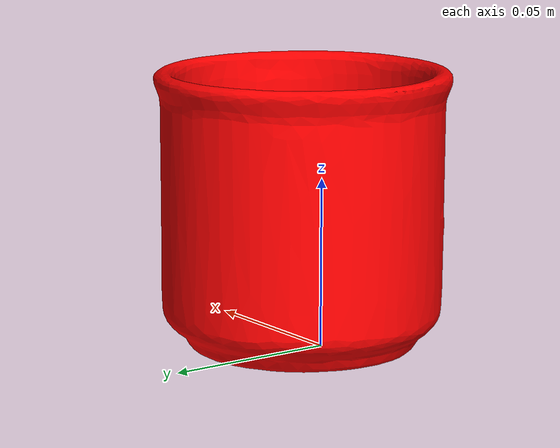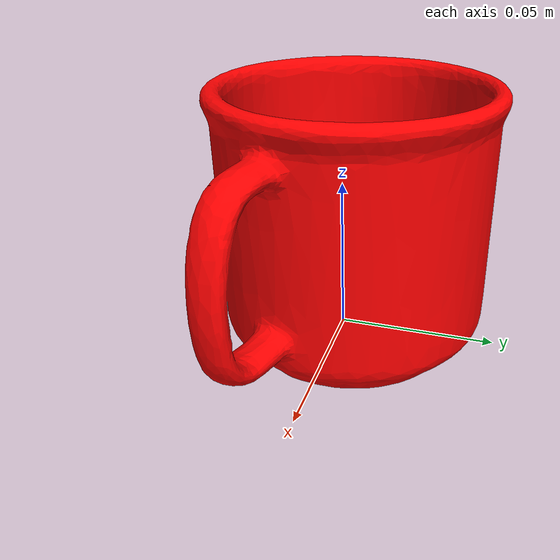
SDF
<?xml version="1.0" ?>
<sdf version="1.5">
  <model name="cupAV">
    <link name="link">
      <pose>0 0 0 0 0 0</pose>
      <inertial>
        <mass>0.5</mass>
        <inertia>
          <ixx>0.0121460888</ixx>
          <ixy>0.00041119425</ixy>
          <ixz>-0.00017330985</ixz>
          <iyy>0.0134317552</iyy>
          <iyz>5.7374125e-05</iyz>
          <izz>0.0137008272</izz>
        </inertia>
      </inertial>

      <collision name="collision">
        <geometry>
          <mesh>
            <uri>model://cupAV/meshes/whiteCup.dae</uri>
            <scale>0.001 0.001 0.001</scale>
          </mesh>
        </geometry>
        <surface>
          <contact>
            <ode>
              <max_vel>0.1</max_vel>
              <min_depth>0.001</min_depth>
              <soft_erp>0.5</soft_erp>
              <soft_cfm>0.001</soft_cfm>
            </ode>
          </contact>
          <friction>
            <ode>
              <mu>10000.0</mu>
              <mu2>10000.0</mu2>
            </ode>
          </friction>
        </surface>
      </collision>

      <visual name="visual">
        <geometry>
          <mesh>
            <uri>model://cupAV/meshes/whiteCup.dae</uri>
            <scale>0.001 0.001 0.001</scale>
          </mesh>
        </geometry>
        <material>
          <ambient>1 0 0 1</ambient>
          <diffuse>1 0 0 1</diffuse>
          <specular>0.1 0.1 0.1 1</specular>
          <emissive>0 0 0 0</emissive>
        </material>
      </visual>
    </link>
  </model>
</sdf>
